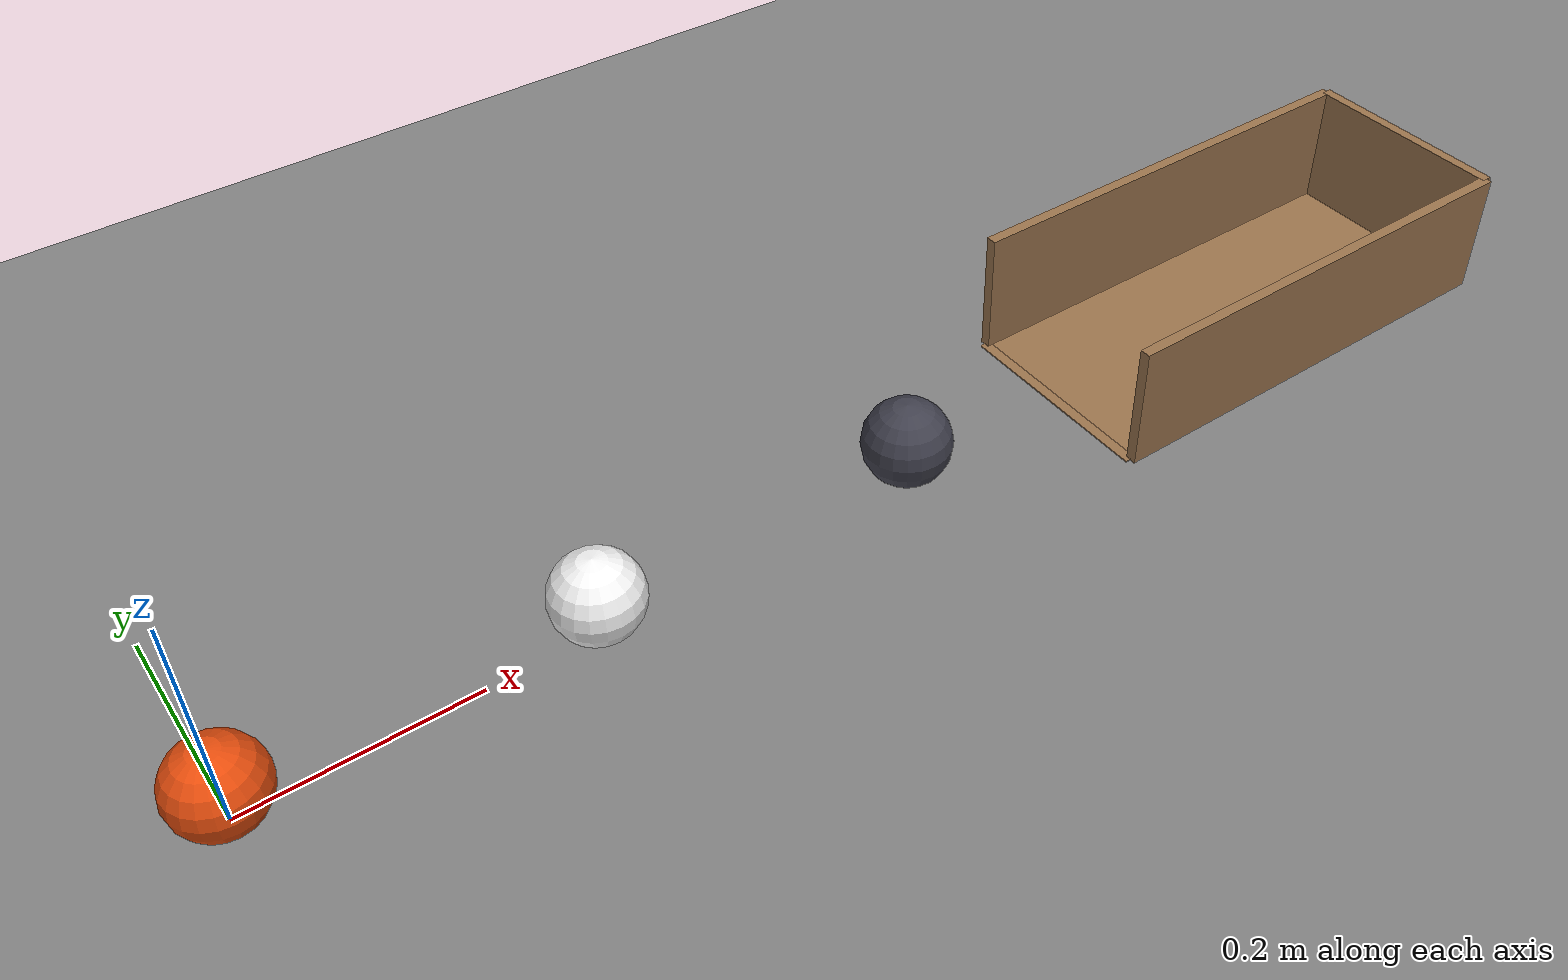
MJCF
<mujoco model="three_balls_roll_into_a_cup">
  <compiler angle="radian"/>
  <option timestep="0.002"/>
  <worldbody>
    <geom name="floor" type="plane" size="4 4 0.1" friction="0.7 0.001 0.0001"/>
    <body name="ball1" pos="0 0 0.04">
      <freejoint/>
      <geom name="ball1" type="sphere" pos="0 0 0" size="0.04" mass="0.1" condim="6" friction="0.7 0.001 0.0001" solref="0.01 0.2" rgba="0.9 0.3 0.05 1"/>
    </body>
    <body name="ball2" pos="0.3 0 0.04">
      <freejoint/>
      <geom name="ball2" type="sphere" pos="0 0 0" size="0.04" mass="0.1" condim="6" friction="0.7 0.001 0.0001" solref="0.01 0.2" rgba="0.95 0.95 0.95 1"/>
    </body>
    <body name="ball3" pos="0.6 0 0.04">
      <freejoint/>
      <geom name="ball3" type="sphere" pos="0 0 0" size="0.04" mass="0.1" condim="6" friction="0.7 0.001 0.0001" solref="0.01 0.2" rgba="0.25 0.25 0.3 1"/>
    </body>
    <body name="cup">
      <geom name="cup_base" type="box" pos="0.99 0 0.0005" size="0.22 0.1 0.0005" friction="0.8 0.01 0.01" solref="0.01 1" rgba="0.6 0.45 0.3 1"/>
      <geom name="cup_near_wall" type="box" pos="0.77 0 0.0005" size="0.005 0.1 0.0005" friction="0.8 0.01 0.01" solref="0.01 1" rgba="0.6 0.45 0.3 1"/>
      <geom name="cup_far_wall" type="box" pos="1.21 0 0.06" size="0.005 0.1 0.06" friction="0.8 0.01 0.01" solref="0.01 1" rgba="0.6 0.45 0.3 1"/>
      <geom name="cup_left_wall" type="box" pos="0.99 0.1 0.06" size="0.22 0.005 0.06" friction="0.8 0.01 0.01" solref="0.01 1" rgba="0.6 0.45 0.3 1"/>
      <geom name="cup_right_wall" type="box" pos="0.99 -0.1 0.06" size="0.22 0.005 0.06" friction="0.8 0.01 0.01" solref="0.01 1" rgba="0.6 0.45 0.3 1"/>
    </body>
  </worldbody>
  <keyframe>
    <key name="start" qpos="0 0 0.04 1 0 0 0 0.3 0 0.04 1 0 0 0 0.6 0 0.04 1 0 0 0" qvel="1.2 0 0 0 30 0 0 0 0 0 0 0 0 0 0 0 0 0"/>
  </keyframe>
</mujoco>
